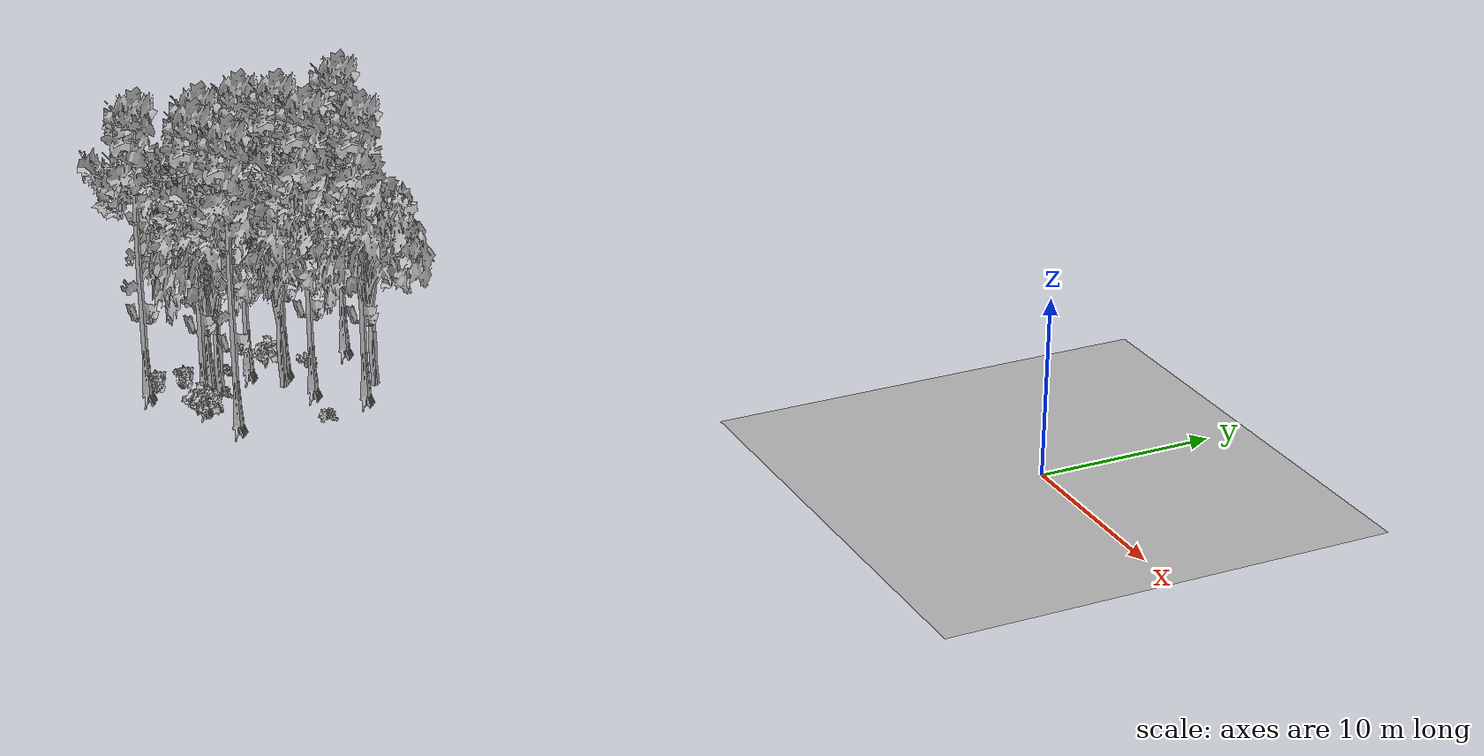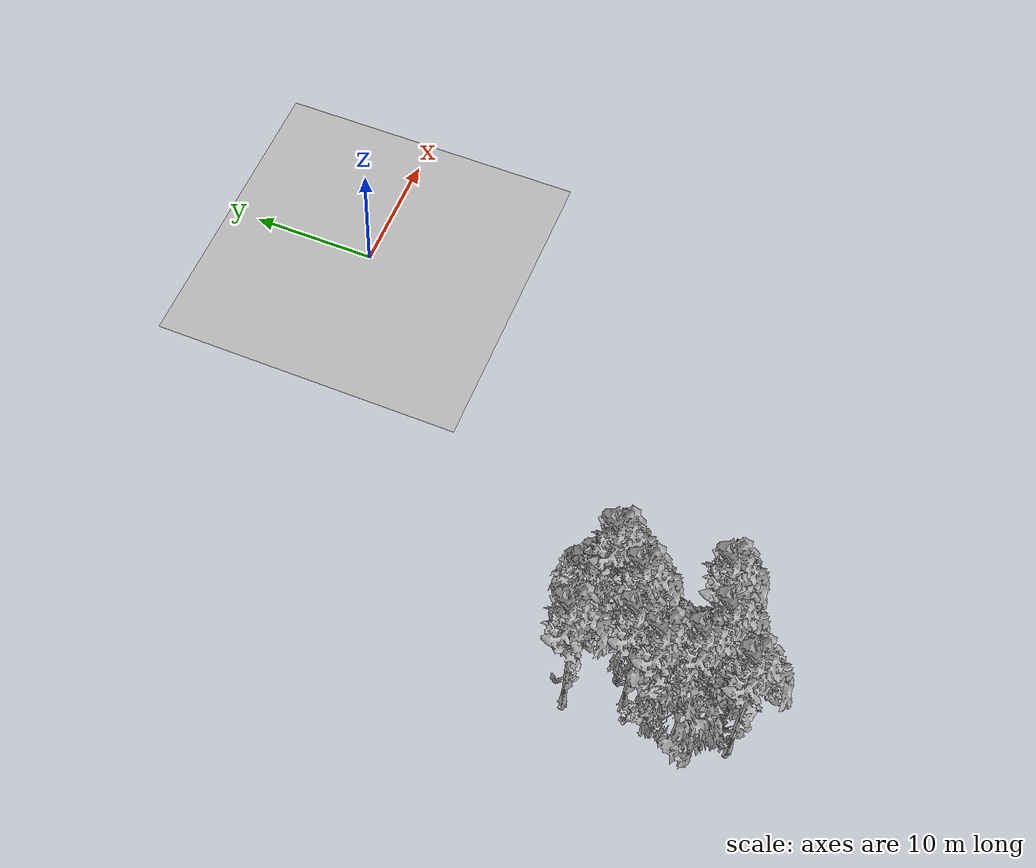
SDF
<sdf version="1.7">
 <world name="default">
  <model name="ground_plane">
   <static>1</static>
   <link name="link">
    <collision name="collision">
     <pose>-50 0 0 0 -0 0</pose>
     <geometry><plane><normal>0 0 1</normal><size>80 80</size></plane></geometry>
     <surface><contact><ode><min_depth>0.01</min_depth><max_vel>0</max_vel></ode></contact></surface>
    </collision>
    <visual name="grass">
     <cast_shadows>0</cast_shadows>
     <geometry>
      <mesh>
       <scale>0.46714285714285714 0.46714285714285714 0.1</scale>
       <uri>file://grass_plane/meshes/grass_plane.dae</uri>
      </mesh>
     </geometry>
    </visual>
   </link>
  </model>
  <model name="Tree 33">
   <static>1</static>
   <pose>-25.515413240035947 -31.273041969222177 0 1.57079 -0 0</pose>
   <link name="link">
    <collision name="collision">
     <geometry><mesh><scale>3.5 5 3.5</scale><uri>model://tree_9/meshes/tree_9.obj</uri></mesh></geometry>
    </collision>
    <visual name="visual">
     <geometry><mesh><scale>3.5 5 3.5</scale><uri>model://tree_9/meshes/tree_9.obj</uri></mesh></geometry>
    </visual>
   </link>
  </model>
  <model name="Tree 91">
   <static>1</static>
   <pose>-24.753697917135984 -28.003083278758474 0 1.57079 -0 0</pose>
   <link name="link">
    <collision name="collision">
     <geometry><mesh><scale>3.5 5 3.5</scale><uri>model://tree_2/meshes/tree_2.obj</uri></mesh></geometry>
    </collision>
    <visual name="visual">
     <geometry><mesh><scale>3.5 5 3.5</scale><uri>model://tree_2/meshes/tree_2.obj</uri></mesh></geometry>
    </visual>
   </link>
  </model>
  <model name="Tree 93">
   <static>1</static>
   <pose>-30.061746520687564 -35.987734012907396 0 1.57079 -0 0</pose>
   <link name="link">
    <collision name="collision">
     <geometry><mesh><scale>3.5 5 3.5</scale><uri>model://tree_2/meshes/tree_2.obj</uri></mesh></geometry>
    </collision>
    <visual name="visual">
     <geometry><mesh><scale>3.5 5 3.5</scale><uri>model://tree_2/meshes/tree_2.obj</uri></mesh></geometry>
    </visual>
   </link>
  </model>
  <model name="Tree 109">
   <static>1</static>
   <pose>-26.617601657448787 -32.62626890485275 0 1.57079 -0 0</pose>
   <link name="link">
    <collision name="collision">
     <geometry><mesh><scale>3.5 5 3.5</scale><uri>model://tree_2/meshes/tree_2.obj</uri></mesh></geometry>
    </collision>
    <visual name="visual">
     <geometry><mesh><scale>3.5 5 3.5</scale><uri>model://tree_2/meshes/tree_2.obj</uri></mesh></geometry>
    </visual>
   </link>
  </model>
  <model name="Tree 199">
   <static>1</static>
   <pose>-22.984570125708107 -36.26594883610781 0 1.57079 -0 0</pose>
   <link name="link">
    <collision name="collision">
     <geometry><mesh><scale>3.5 5 3.5</scale><uri>model://tree_9/meshes/tree_9.obj</uri></mesh></geometry>
    </collision>
    <visual name="visual">
     <geometry><mesh><scale>3.5 5 3.5</scale><uri>model://tree_9/meshes/tree_9.obj</uri></mesh></geometry>
    </visual>
   </link>
  </model>
  <model name="Tree 227">
   <static>1</static>
   <pose>-26.918708375707766 -36.10186401521615 0 1.57079 -0 0</pose>
   <link name="link">
    <collision name="collision">
     <geometry><mesh><scale>3.5 5 3.5</scale><uri>model://tree_2/meshes/tree_2.obj</uri></mesh></geometry>
    </collision>
    <visual name="visual">
     <geometry><mesh><scale>3.5 5 3.5</scale><uri>model://tree_2/meshes/tree_2.obj</uri></mesh></geometry>
    </visual>
   </link>
  </model>
  <model name="Tree 263">
   <static>1</static>
   <pose>-28.266114806220806 -36.27668633645318 0 1.57079 -0 0</pose>
   <link name="link">
    <collision name="collision">
     <geometry><mesh><scale>3.5 5 3.5</scale><uri>model://tree_9/meshes/tree_9.obj</uri></mesh></geometry>
    </collision>
    <visual name="visual">
     <geometry><mesh><scale>3.5 5 3.5</scale><uri>model://tree_9/meshes/tree_9.obj</uri></mesh></geometry>
    </visual>
   </link>
  </model>
  <model name="Tree 264">
   <static>1</static>
   <pose>-23.582243729128752 -28.88728339283409 0 1.57079 -0 0</pose>
   <link name="link">
    <collision name="collision">
     <geometry><mesh><scale>3.5 5 3.5</scale><uri>model://tree_9/meshes/tree_9.obj</uri></mesh></geometry>
    </collision>
    <visual name="visual">
     <geometry><mesh><scale>3.5 5 3.5</scale><uri>model://tree_9/meshes/tree_9.obj</uri></mesh></geometry>
    </visual>
   </link>
  </model>
  <model name="Tree 346">
   <static>1</static>
   <pose>-29.871000291996587 -28.006921227174537 0 1.57079 -0 0</pose>
   <link name="link">
    <collision name="collision">
     <geometry><mesh><scale>3.5 5 3.5</scale><uri>model://tree_9/meshes/tree_9.obj</uri></mesh></geometry>
    </collision>
    <visual name="visual">
     <geometry><mesh><scale>3.5 5 3.5</scale><uri>model://tree_9/meshes/tree_9.obj</uri></mesh></geometry>
    </visual>
   </link>
  </model>
  <model name="Tree 363">
   <static>1</static>
   <pose>-25.974487705374212 -37.226134207401785 0 1.57079 -0 0</pose>
   <link name="link">
    <collision name="collision">
     <geometry><mesh><scale>3.5 5 3.5</scale><uri>model://tree_9/meshes/tree_9.obj</uri></mesh></geometry>
    </collision>
    <visual name="visual">
     <geometry><mesh><scale>3.5 5 3.5</scale><uri>model://tree_9/meshes/tree_9.obj</uri></mesh></geometry>
    </visual>
   </link>
  </model>
  <model name="Tree 458">
   <static>1</static>
   <pose>-28.46889605460899 -31.924500823688035 0 1.57079 -0 0</pose>
   <link name="link">
    <collision name="collision">
     <geometry><mesh><scale>3.5 5 3.5</scale><uri>model://tree_9/meshes/tree_9.obj</uri></mesh></geometry>
    </collision>
    <visual name="visual">
     <geometry><mesh><scale>3.5 5 3.5</scale><uri>model://tree_9/meshes/tree_9.obj</uri></mesh></geometry>
    </visual>
   </link>
  </model>
  <model name="Tree 462">
   <static>1</static>
   <pose>-28.787761980937002 -39.63478760493259 0 1.57079 -0 0</pose>
   <link name="link">
    <collision name="collision">
     <geometry><mesh><scale>3.5 5 3.5</scale><uri>model://tree_9/meshes/tree_9.obj</uri></mesh></geometry>
    </collision>
    <visual name="visual">
     <geometry><mesh><scale>3.5 5 3.5</scale><uri>model://tree_9/meshes/tree_9.obj</uri></mesh></geometry>
    </visual>
   </link>
  </model>
  <model name="Tree 520">
   <static>1</static>
   <pose>-29.206708628071905 -33.80418829785184 0 1.57079 -0 0</pose>
   <link name="link">
    <collision name="collision">
     <geometry><mesh><scale>3.5 5 3.5</scale><uri>model://tree_9/meshes/tree_9.obj</uri></mesh></geometry>
    </collision>
    <visual name="visual">
     <geometry><mesh><scale>3.5 5 3.5</scale><uri>model://tree_9/meshes/tree_9.obj</uri></mesh></geometry>
    </visual>
   </link>
  </model>
  <model name="Bush 188">
   <static>1</static>
   <pose>-21.979853700065405 -31.635751566453372 0 1.57079 -0 0</pose>
   <link name="link">
    <collision name="collision">
     <geometry><mesh><scale>2 2 2</scale><uri>model://bush_2/meshes/bush_2.obj</uri></mesh></geometry>
     <surface><contact><collide_without_contact>false</collide_without_contact></contact></surface>
    </collision>
    <visual name="visual">
     <geometry><mesh><scale>2 2 2</scale><uri>model://bush_2/meshes/bush_2.obj</uri></mesh></geometry>
    </visual>
   </link>
  </model>
  <model name="Bush 235">
   <static>1</static>
   <pose>-27.283932509071157 -36.911386831737545 0 1.57079 -0 0</pose>
   <link name="link">
    <collision name="collision">
     <geometry><mesh><scale>2 2 2</scale><uri>model://bush_2/meshes/bush_2.obj</uri></mesh></geometry>
     <surface><contact><collide_without_contact>false</collide_without_contact></contact></surface>
    </collision>
    <visual name="visual">
     <geometry><mesh><scale>2 2 2</scale><uri>model://bush_2/meshes/bush_2.obj</uri></mesh></geometry>
    </visual>
   </link>
  </model>
  <model name="Bush 241">
   <static>1</static>
   <pose>-26.82933526209223 -30.954588653905333 0 1.57079 -0 0</pose>
   <link name="link">
    <collision name="collision">
     <geometry><mesh><scale>2 2 2</scale><uri>model://bush_5/meshes/bush_5.obj</uri></mesh></geometry>
     <surface><contact><collide_without_contact>false</collide_without_contact></contact></surface>
    </collision>
    <visual name="visual">
     <geometry><mesh><scale>2 2 2</scale><uri>model://bush_5/meshes/bush_5.obj</uri></mesh></geometry>
    </visual>
   </link>
  </model>
  <model name="Bush 257">
   <static>1</static>
   <pose>-29.676557876169383 -35.166709670773 0 1.57079 -0 0</pose>
   <link name="link">
    <collision name="collision">
     <geometry><mesh><scale>2 2 2</scale><uri>model://bush_2/meshes/bush_2.obj</uri></mesh></geometry>
     <surface><contact><collide_without_contact>false</collide_without_contact></contact></surface>
    </collision>
    <visual name="visual">
     <geometry><mesh><scale>2 2 2</scale><uri>model://bush_2/meshes/bush_2.obj</uri></mesh></geometry>
    </visual>
   </link>
  </model>
  <model name="Bush 354">
   <static>1</static>
   <pose>-28.574201520026342 -37.73018843742163 0 1.57079 -0 0</pose>
   <link name="link">
    <collision name="collision">
     <geometry><mesh><scale>2 2 2</scale><uri>model://bush_4/meshes/bush_4.obj</uri></mesh></geometry>
     <surface><contact><collide_without_contact>false</collide_without_contact></contact></surface>
    </collision>
    <visual name="visual">
     <geometry><mesh><scale>2 2 2</scale><uri>model://bush_4/meshes/bush_4.obj</uri></mesh></geometry>
    </visual>
   </link>
  </model>
  <model name="Bush 363">
   <static>1</static>
   <pose>-24.337866308808863 -37.64327502392821 0 1.57079 -0 0</pose>
   <link name="link">
    <collision name="collision">
     <geometry><mesh><scale>2 2 2</scale><uri>model://bush_1/meshes/bush_1.obj</uri></mesh></geometry>
     <surface><contact><collide_without_contact>false</collide_without_contact></contact></surface>
    </collision>
    <visual name="visual">
     <geometry><mesh><scale>2 2 2</scale><uri>model://bush_1/meshes/bush_1.obj</uri></mesh></geometry>
    </visual>
   </link>
  </model>
  <model name="Bush 410">
   <static>1</static>
   <pose>-29.225118977884705 -32.83881470751397 0 1.57079 -0 0</pose>
   <link name="link">
    <collision name="collision">
     <geometry><mesh><scale>2 2 2</scale><uri>model://bush_1/meshes/bush_1.obj</uri></mesh></geometry>
     <surface><contact><collide_without_contact>false</collide_without_contact></contact></surface>
    </collision>
    <visual name="visual">
     <geometry><mesh><scale>2 2 2</scale><uri>model://bush_1/meshes/bush_1.obj</uri></mesh></geometry>
    </visual>
   </link>
  </model>
  <model name="Bush 457">
   <static>1</static>
   <pose>-28.649432499078458 -39.261706200447044 0 1.57079 -0 0</pose>
   <link name="link">
    <collision name="collision">
     <geometry><mesh><scale>2 2 2</scale><uri>model://bush_4/meshes/bush_4.obj</uri></mesh></geometry>
     <surface><contact><collide_without_contact>false</collide_without_contact></contact></surface>
    </collision>
    <visual name="visual">
     <geometry><mesh><scale>2 2 2</scale><uri>model://bush_4/meshes/bush_4.obj</uri></mesh></geometry>
    </visual>
   </link>
  </model>
  <model name="Bush 501">
   <static>1</static>
   <pose>-25.00665933203186 -37.915319648644044 0 1.57079 -0 0</pose>
   <link name="link">
    <collision name="collision">
     <geometry><mesh><scale>2 2 2</scale><uri>model://bush_1/meshes/bush_1.obj</uri></mesh></geometry>
     <surface><contact><collide_without_contact>false</collide_without_contact></contact></surface>
    </collision>
    <visual name="visual">
     <geometry><mesh><scale>2 2 2</scale><uri>model://bush_1/meshes/bush_1.obj</uri></mesh></geometry>
    </visual>
   </link>
  </model>
  <model name="Bush 545">
   <static>1</static>
   <pose>-27.012683835814965 -35.98888844677005 0 1.57079 -0 0</pose>
   <link name="link">
    <collision name="collision">
     <geometry><mesh><scale>2 2 2</scale><uri>model://bush_2/meshes/bush_2.obj</uri></mesh></geometry>
     <surface><contact><collide_without_contact>false</collide_without_contact></contact></surface>
    </collision>
    <visual name="visual">
     <geometry><mesh><scale>2 2 2</scale><uri>model://bush_2/meshes/bush_2.obj</uri></mesh></geometry>
    </visual>
   </link>
  </model>
 </world>
</sdf>
